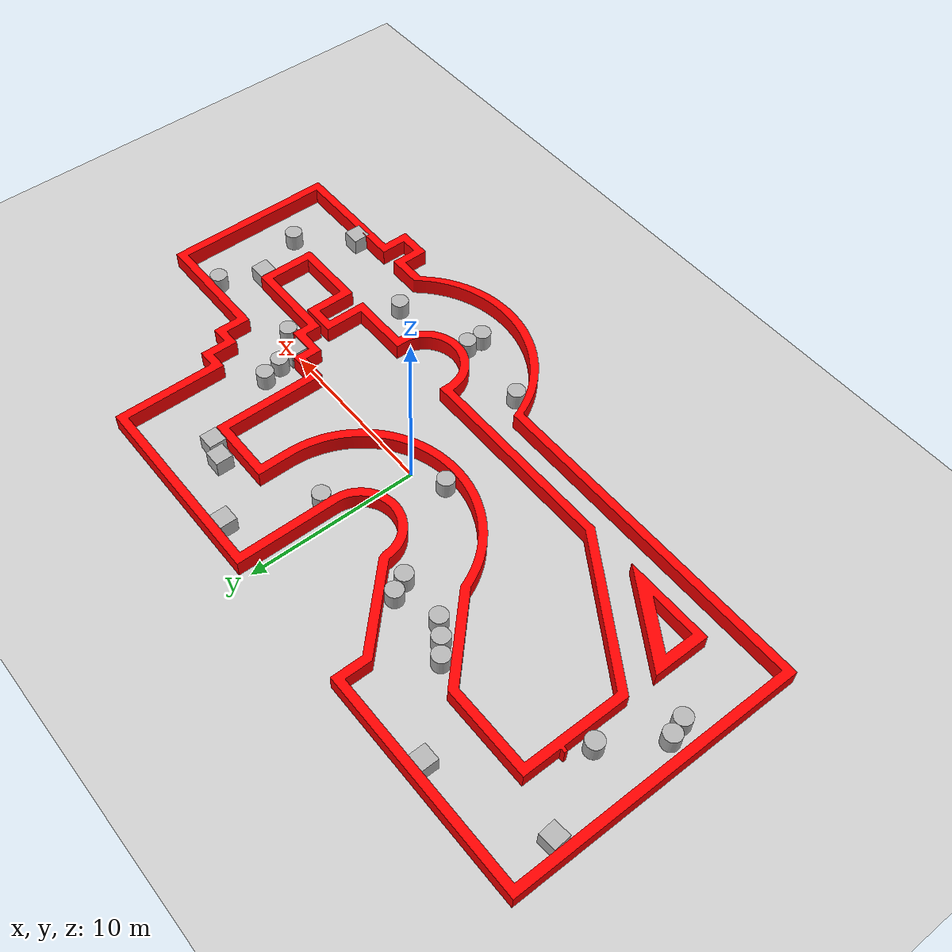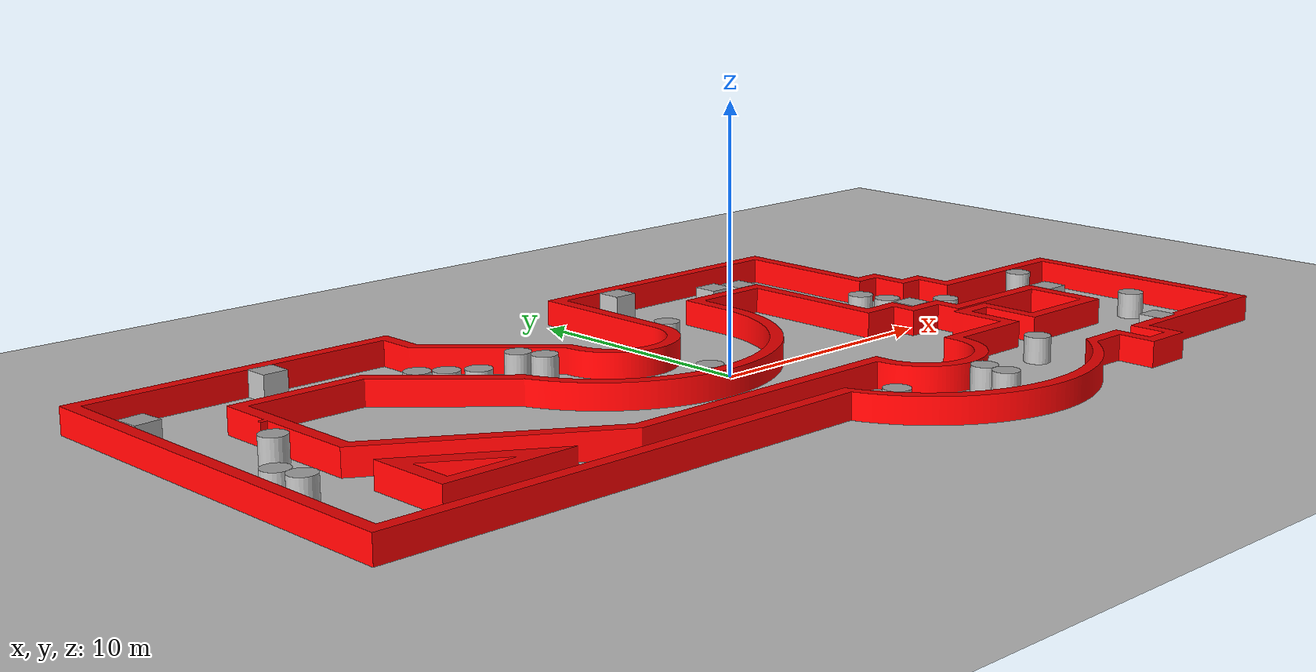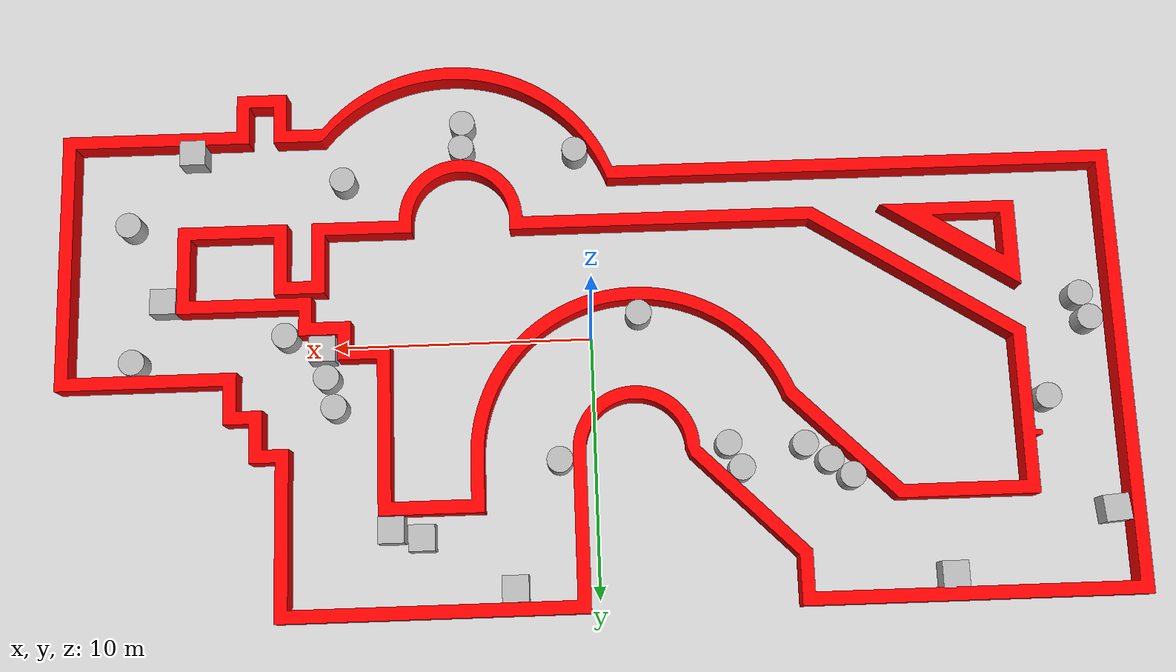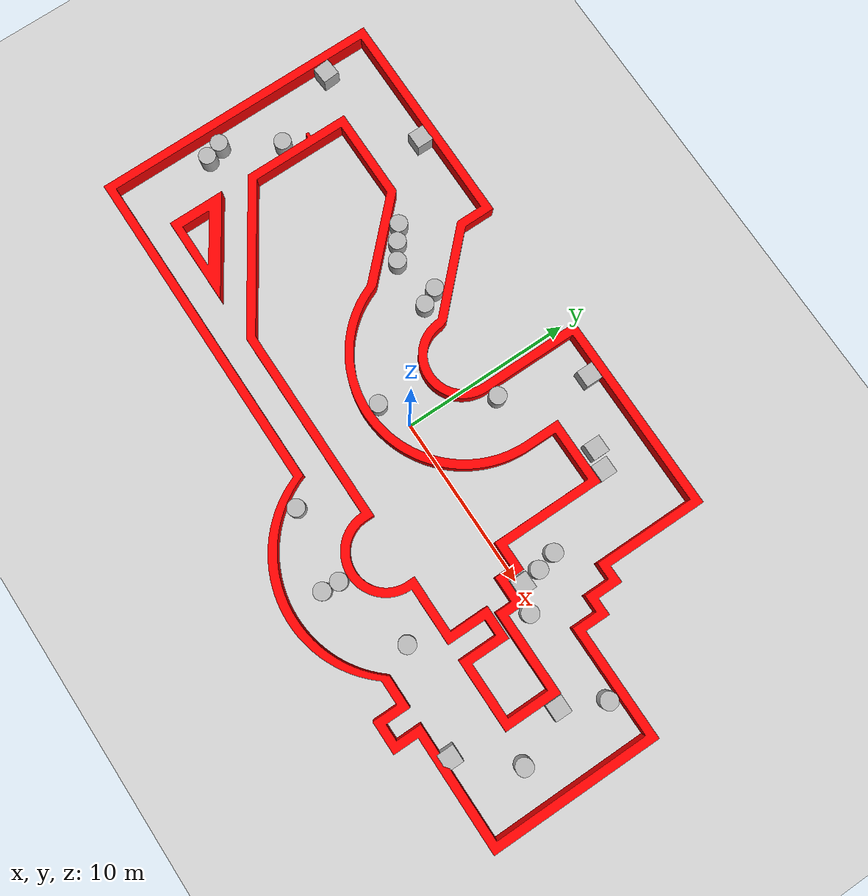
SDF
<sdf version='1.10'>
  <world name='empty_world'>
    <physics name='1ms' type='ignored'>
      <max_step_size>0.001</max_step_size>
      <real_time_factor>1</real_time_factor>
      <real_time_update_rate>1000</real_time_update_rate>
    </physics>
    <plugin name='gz::sim::systems::Physics' filename='gz-sim-physics-system'/>
    <plugin name='gz::sim::systems::Sensors' filename='gz-sim-sensors-system'>
      <render_engine>ogre2</render_engine>
    </plugin>
    <plugin name='gz::sim::systems::Imu' filename='gz-sim-imu-system'/>
    <plugin name='gz::sim::systems::SceneBroadcaster' filename='gz-sim-scene-broadcaster-system'/>
    <plugin name='gz::sim::systems::UserCommands' filename='gz-sim-user-commands-system'/>
    <gravity>0 0 -9.8000000000000007</gravity>
    <magnetic_field>5.5644999999999998e-06 2.2875799999999999e-05 -4.2388400000000002e-05</magnetic_field>
    <atmosphere type='adiabatic'/>
    <scene>
      <ambient>0.400000006 0.400000006 0.400000006 1</ambient>
      <background>0.699999988 0.699999988 0.699999988 1</background>
      <shadows>true</shadows>
    </scene>
    <model name='ground_plane'>
      <static>true</static>
      <link name='link'>
        <collision name='collision'>
          <geometry>
            <plane>
              <normal>0 0 1</normal>
              <size>100 100</size>
            </plane>
          </geometry>
          <surface>
            <friction>
              <ode/>
            </friction>
            <bounce/>
            <contact/>
          </surface>
        </collision>
        <visual name='visual'>
          <geometry>
            <plane>
              <normal>0 0 1</normal>
              <size>100 100</size>
            </plane>
          </geometry>
          <material>
            <ambient>0.800000012 0.800000012 0.800000012 1</ambient>
            <diffuse>0.800000012 0.800000012 0.800000012 1</diffuse>
            <specular>0.800000012 0.800000012 0.800000012 1</specular>
          </material>
        </visual>
        <pose>0 0 0 0 0 0</pose>
        <inertial>
          <pose>0 0 0 0 0 0</pose>
          <mass>1</mass>
          <inertia>
            <ixx>1</ixx>
            <ixy>0</ixy>
            <ixz>0</ixz>
            <iyy>1</iyy>
            <iyz>0</iyz>
            <izz>1</izz>
          </inertia>
        </inertial>
        <enable_wind>false</enable_wind>
      </link>
      <pose>0 0 0 0 0 0</pose>
      <self_collide>false</self_collide>
    </model>
    <model name='stl_maze'>
      <pose>0 0 0 0 0 0</pose>
      <static>true</static>
      <link name='link'>
        <collision name='maze_collision'>
          <geometry>
            <mesh>
              <uri>file:///home/lenovo/mrad_ws_2602_hotel/src/hotel_gazebo/worlds/RaceTrack.stl</uri>
              <scale>10 10 10</scale>
            </mesh>
          </geometry>
          <surface>
            <friction>
              <ode/>
            </friction>
            <bounce/>
            <contact/>
          </surface>
        </collision>
        <visual name='visual'>
          <geometry>
            <mesh>
              <uri>file:///home/lenovo/mrad_ws_2602_hotel/src/hotel_gazebo/worlds/RaceTrack.stl</uri>
              <scale>10 10 10</scale>
            </mesh>
          </geometry>
          <material>
            <ambient>1 0 0 1</ambient>
            <diffuse>1 0 0 1</diffuse>
            <specular>1 0 0 1</specular>
          </material>
        </visual>
        <pose>0 0 0 0 0 0</pose>
        <inertial>
          <pose>0 0 0 0 0 0</pose>
          <mass>1</mass>
          <inertia>
            <ixx>1</ixx>
            <ixy>0</ixy>
            <ixz>0</ixz>
            <iyy>1</iyy>
            <iyz>0</iyz>
            <izz>1</izz>
          </inertia>
        </inertial>
        <enable_wind>false</enable_wind>
      </link>
      <self_collide>false</self_collide>
    </model>
    <model name='box'>
      <pose>-19.447543866838423 7.2747616850761476 0.4999995747579436 -3.8605564281143885e-07 1.6945823438939649e-07 0.077861553158576652</pose>
      <link name='box_link'>
        <inertial>
          <inertia>
            <ixx>0.16666</ixx>
            <ixy>0</ixy>
            <ixz>0</ixz>
            <iyy>0.16666</iyy>
            <iyz>0</iyz>
            <izz>0.16666</izz>
          </inertia>
          <mass>1</mass>
          <pose>0 0 0 0 0 0</pose>
        </inertial>
        <collision name='box_collision'>
          <geometry>
            <box>
              <size>1 1 1</size>
            </box>
          </geometry>
          <surface>
            <friction>
              <ode/>
            </friction>
            <bounce/>
            <contact/>
          </surface>
        </collision>
        <visual name='box_visual'>
          <geometry>
            <box>
              <size>1 1 1</size>
            </box>
          </geometry>
          <material>
            <ambient>0.300000012 0.300000012 0.300000012 1</ambient>
            <diffuse>0.699999988 0.699999988 0.699999988 1</diffuse>
            <specular>1 1 1 1</specular>
          </material>
        </visual>
        <pose>0 0 0 0 0 0</pose>
        <enable_wind>false</enable_wind>
      </link>
      <static>true</static>
      <self_collide>false</self_collide>
    </model>
    <model name='box_0'>
      <pose>-13.199981477717435 9.529411715496714 0.49999999063292572 1.9729171940061026e-08 -1.4001924528147462e-09 0.0024933186258197433</pose>
      <link name='box_link'>
        <inertial>
          <inertia>
            <ixx>0.16666</ixx>
            <ixy>0</ixy>
            <ixz>0</ixz>
            <iyy>0.16666</iyy>
            <iyz>0</iyz>
            <izz>0.16666</izz>
          </inertia>
          <mass>1</mass>
          <pose>0 0 0 0 0 0</pose>
        </inertial>
        <collision name='box_collision'>
          <geometry>
            <box>
              <size>1 1 1</size>
            </box>
          </geometry>
          <surface>
            <friction>
              <ode/>
            </friction>
            <bounce/>
            <contact/>
          </surface>
        </collision>
        <visual name='box_visual'>
          <geometry>
            <box>
              <size>1 1 1</size>
            </box>
          </geometry>
          <material>
            <ambient>0.300000012 0.300000012 0.300000012 1</ambient>
            <diffuse>0.699999988 0.699999988 0.699999988 1</diffuse>
            <specular>1 1 1 1</specular>
          </material>
        </visual>
        <pose>0 0 0 0 0 0</pose>
        <enable_wind>false</enable_wind>
      </link>
      <static>true</static>
      <self_collide>false</self_collide>
    </model>
    <model name='cylinder'>
      <pose>-9.6523482860643313 5.6966679601534516 0.49999943547231995 -1.4102198390911328e-08 1.0731281663783188e-08 -0.050406535512246387</pose>
      <link name='cylinder_link'>
        <inertial>
          <inertia>
            <ixx>0.14580000000000001</ixx>
            <ixy>0</ixy>
            <ixz>0</ixz>
            <iyy>0.14580000000000001</iyy>
            <iyz>0</iyz>
            <izz>0.125</izz>
          </inertia>
          <mass>1</mass>
          <pose>0 0 0 0 0 0</pose>
        </inertial>
        <collision name='cylinder_collision'>
          <geometry>
            <cylinder>
              <radius>0.5</radius>
              <length>1</length>
            </cylinder>
          </geometry>
          <surface>
            <friction>
              <ode/>
            </friction>
            <bounce/>
            <contact/>
          </surface>
        </collision>
        <visual name='cylinder_visual'>
          <geometry>
            <cylinder>
              <radius>0.5</radius>
              <length>1</length>
            </cylinder>
          </geometry>
          <material>
            <ambient>0.300000012 0.300000012 0.300000012 1</ambient>
            <diffuse>0.699999988 0.699999988 0.699999988 1</diffuse>
            <specular>1 1 1 1</specular>
          </material>
        </visual>
        <pose>0 0 0 0 0 0</pose>
        <enable_wind>false</enable_wind>
      </link>
      <static>true</static>
      <self_collide>false</self_collide>
    </model>
    <model name='cylinder_0'>
      <pose>-5.4981639678038725 5.2748518919406786 0.49999942638036005 -3.8159951733573719e-21 -1.6049541814374341e-19 1.6504470069877819e-20</pose>
      <link name='cylinder_link'>
        <inertial>
          <inertia>
            <ixx>0.14580000000000001</ixx>
            <ixy>0</ixy>
            <ixz>0</ixz>
            <iyy>0.14580000000000001</iyy>
            <iyz>0</iyz>
            <izz>0.125</izz>
          </inertia>
          <mass>1</mass>
          <pose>0 0 0 0 0 0</pose>
        </inertial>
        <collision name='cylinder_collision'>
          <geometry>
            <cylinder>
              <radius>0.5</radius>
              <length>1</length>
            </cylinder>
          </geometry>
          <surface>
            <friction>
              <ode/>
            </friction>
            <bounce/>
            <contact/>
          </surface>
        </collision>
        <visual name='cylinder_visual'>
          <geometry>
            <cylinder>
              <radius>0.5</radius>
              <length>1</length>
            </cylinder>
          </geometry>
          <material>
            <ambient>0.300000012 0.300000012 0.300000012 1</ambient>
            <diffuse>0.699999988 0.699999988 0.699999988 1</diffuse>
            <specular>1 1 1 1</specular>
          </material>
        </visual>
        <pose>0 0 0 0 0 0</pose>
        <enable_wind>false</enable_wind>
      </link>
      <static>true</static>
      <self_collide>false</self_collide>
    </model>
    <model name='cylinder_1'>
      <pose>-1.8368737283679906 -0.82918888756835818 0.49999942638036005 1.387387341066153e-19 1.7479834102454724e-19 1.8186544634463279e-20</pose>
      <link name='cylinder_link'>
        <inertial>
          <inertia>
            <ixx>0.14580000000000001</ixx>
            <ixy>0</ixy>
            <ixz>0</ixz>
            <iyy>0.14580000000000001</iyy>
            <iyz>0</iyz>
            <izz>0.125</izz>
          </inertia>
          <mass>1</mass>
          <pose>0 0 0 0 0 0</pose>
        </inertial>
        <collision name='cylinder_collision'>
          <geometry>
            <cylinder>
              <radius>0.5</radius>
              <length>1</length>
            </cylinder>
          </geometry>
          <surface>
            <friction>
              <ode/>
            </friction>
            <bounce/>
            <contact/>
          </surface>
        </collision>
        <visual name='cylinder_visual'>
          <geometry>
            <cylinder>
              <radius>0.5</radius>
              <length>1</length>
            </cylinder>
          </geometry>
          <material>
            <ambient>0.300000012 0.300000012 0.300000012 1</ambient>
            <diffuse>0.699999988 0.699999988 0.699999988 1</diffuse>
            <specular>1 1 1 1</specular>
          </material>
        </visual>
        <pose>0 0 0 0 0 0</pose>
        <enable_wind>false</enable_wind>
      </link>
      <static>true</static>
      <self_collide>false</self_collide>
    </model>
    <model name='cylinder_2'>
      <pose>1.3572129056381694 4.7458462281199152 0.4999994329199538 7.3766348633423013e-16 1.0797278830729775e-08 9.9707944005853484e-10</pose>
      <link name='cylinder_link'>
        <inertial>
          <inertia>
            <ixx>0.14580000000000001</ixx>
            <ixy>0</ixy>
            <ixz>0</ixz>
            <iyy>0.14580000000000001</iyy>
            <iyz>0</iyz>
            <izz>0.125</izz>
          </inertia>
          <mass>1</mass>
          <pose>0 0 0 0 0 0</pose>
        </inertial>
        <collision name='cylinder_collision'>
          <geometry>
            <cylinder>
              <radius>0.5</radius>
              <length>1</length>
            </cylinder>
          </geometry>
          <surface>
            <friction>
              <ode/>
            </friction>
            <bounce/>
            <contact/>
          </surface>
        </collision>
        <visual name='cylinder_visual'>
          <geometry>
            <cylinder>
              <radius>0.5</radius>
              <length>1</length>
            </cylinder>
          </geometry>
          <material>
            <ambient>0.300000012 0.300000012 0.300000012 1</ambient>
            <diffuse>0.699999988 0.699999988 0.699999988 1</diffuse>
            <specular>1 1 1 1</specular>
          </material>
        </visual>
        <pose>0 0 0 0 0 0</pose>
        <enable_wind>false</enable_wind>
      </link>
      <static>true</static>
      <self_collide>false</self_collide>
    </model>
    <model name='box_1'>
      <pose>3.1426352733939655 9.4955979281874896 0.49999999990199806 6.2287739151293738e-22 9.3279666454713669e-22 -3.6315533669320137e-22</pose>
      <link name='box_link'>
        <inertial>
          <inertia>
            <ixx>0.16666</ixx>
            <ixy>0</ixy>
            <ixz>0</ixz>
            <iyy>0.16666</iyy>
            <iyz>0</iyz>
            <izz>0.16666</izz>
          </inertia>
          <mass>1</mass>
          <pose>0 0 0 0 0 0</pose>
        </inertial>
        <collision name='box_collision'>
          <geometry>
            <box>
              <size>1 1 1</size>
            </box>
          </geometry>
          <surface>
            <friction>
              <ode/>
            </friction>
            <bounce/>
            <contact/>
          </surface>
        </collision>
        <visual name='box_visual'>
          <geometry>
            <box>
              <size>1 1 1</size>
            </box>
          </geometry>
          <material>
            <ambient>0.300000012 0.300000012 0.300000012 1</ambient>
            <diffuse>0.699999988 0.699999988 0.699999988 1</diffuse>
            <specular>1 1 1 1</specular>
          </material>
        </visual>
        <pose>0 0 0 0 0 0</pose>
        <enable_wind>false</enable_wind>
      </link>
      <static>true</static>
      <self_collide>false</self_collide>
    </model>
    <model name='box_2'>
      <pose>7.7352183409828932 7.170943573487464 0.49999999990199806 6.2287739151293738e-22 9.3279666454713669e-22 -3.6315533669320137e-22</pose>
      <link name='box_link'>
        <inertial>
          <inertia>
            <ixx>0.16666</ixx>
            <ixy>0</ixy>
            <ixz>0</ixz>
            <iyy>0.16666</iyy>
            <iyz>0</iyz>
            <izz>0.16666</izz>
          </inertia>
          <mass>1</mass>
          <pose>0 0 0 0 0 0</pose>
        </inertial>
        <collision name='box_collision'>
          <geometry>
            <box>
              <size>1 1 1</size>
            </box>
          </geometry>
          <surface>
            <friction>
              <ode/>
            </friction>
            <bounce/>
            <contact/>
          </surface>
        </collision>
        <visual name='box_visual'>
          <geometry>
            <box>
              <size>1 1 1</size>
            </box>
          </geometry>
          <material>
            <ambient>0.300000012 0.300000012 0.300000012 1</ambient>
            <diffuse>0.699999988 0.699999988 0.699999988 1</diffuse>
            <specular>1 1 1 1</specular>
          </material>
        </visual>
        <pose>0 0 0 0 0 0</pose>
        <enable_wind>false</enable_wind>
      </link>
      <static>true</static>
      <self_collide>false</self_collide>
    </model>
    <model name='box_3'>
      <pose>10.320273458855231 0.17719998761532096 0.49999999990199806 6.2287739151293738e-22 9.3279666454713669e-22 -3.6315533669320137e-22</pose>
      <link name='box_link'>
        <inertial>
          <inertia>
            <ixx>0.16666</ixx>
            <ixy>0</ixy>
            <ixz>0</ixz>
            <iyy>0.16666</iyy>
            <iyz>0</iyz>
            <izz>0.16666</izz>
          </inertia>
          <mass>1</mass>
          <pose>0 0 0 0 0 0</pose>
        </inertial>
        <collision name='box_collision'>
          <geometry>
            <box>
              <size>1 1 1</size>
            </box>
          </geometry>
          <surface>
            <friction>
              <ode/>
            </friction>
            <bounce/>
            <contact/>
          </surface>
        </collision>
        <visual name='box_visual'>
          <geometry>
            <box>
              <size>1 1 1</size>
            </box>
          </geometry>
          <material>
            <ambient>0.300000012 0.300000012 0.300000012 1</ambient>
            <diffuse>0.699999988 0.699999988 0.699999988 1</diffuse>
            <specular>1 1 1 1</specular>
          </material>
        </visual>
        <pose>0 0 0 0 0 0</pose>
        <enable_wind>false</enable_wind>
      </link>
      <static>true</static>
      <self_collide>false</self_collide>
    </model>
    <model name='cylinder_3'>
      <pose>10.159927280281213 1.3013546185450826 0.49999942638036005 4.6875231528734115e-19 1.7167537846951419e-19 8.1521379182205424e-21</pose>
      <link name='cylinder_link'>
        <inertial>
          <inertia>
            <ixx>0.14580000000000001</ixx>
            <ixy>0</ixy>
            <ixz>0</ixz>
            <iyy>0.14580000000000001</iyy>
            <iyz>0</iyz>
            <izz>0.125</izz>
          </inertia>
          <mass>1</mass>
          <pose>0 0 0 0 0 0</pose>
        </inertial>
        <collision name='cylinder_collision'>
          <geometry>
            <cylinder>
              <radius>0.5</radius>
              <length>1</length>
            </cylinder>
          </geometry>
          <surface>
            <friction>
              <ode/>
            </friction>
            <bounce/>
            <contact/>
          </surface>
        </collision>
        <visual name='cylinder_visual'>
          <geometry>
            <cylinder>
              <radius>0.5</radius>
              <length>1</length>
            </cylinder>
          </geometry>
          <material>
            <ambient>0.300000012 0.300000012 0.300000012 1</ambient>
            <diffuse>0.699999988 0.699999988 0.699999988 1</diffuse>
            <specular>1 1 1 1</specular>
          </material>
        </visual>
        <pose>0 0 0 0 0 0</pose>
        <enable_wind>false</enable_wind>
      </link>
      <static>true</static>
      <self_collide>false</self_collide>
    </model>
    <model name='cylinder_4'>
      <pose>17.589204301012245 0.46902261892449904 0.49999942638036005 9.6960953410408387e-20 -3.2720050125789555e-19 2.4647587059717133e-20</pose>
      <link name='cylinder_link'>
        <inertial>
          <inertia>
            <ixx>0.14580000000000001</ixx>
            <ixy>0</ixy>
            <ixz>0</ixz>
            <iyy>0.14580000000000001</iyy>
            <iyz>0</iyz>
            <izz>0.125</izz>
          </inertia>
          <mass>1</mass>
          <pose>0 0 0 0 0 0</pose>
        </inertial>
        <collision name='cylinder_collision'>
          <geometry>
            <cylinder>
              <radius>0.5</radius>
              <length>1</length>
            </cylinder>
          </geometry>
          <surface>
            <friction>
              <ode/>
            </friction>
            <bounce/>
            <contact/>
          </surface>
        </collision>
        <visual name='cylinder_visual'>
          <geometry>
            <cylinder>
              <radius>0.5</radius>
              <length>1</length>
            </cylinder>
          </geometry>
          <material>
            <ambient>0.300000012 0.300000012 0.300000012 1</ambient>
            <diffuse>0.699999988 0.699999988 0.699999988 1</diffuse>
            <specular>1 1 1 1</specular>
          </material>
        </visual>
        <pose>0 0 0 0 0 0</pose>
        <enable_wind>false</enable_wind>
      </link>
      <static>true</static>
      <self_collide>false</self_collide>
    </model>
    <model name='box_4'>
      <pose>16.449988264482197 -1.8886496375233657 0.49999999990199806 6.2287739151293738e-22 9.3279666454713669e-22 -3.6315533669320137e-22</pose>
      <link name='box_link'>
        <inertial>
          <inertia>
            <ixx>0.16666</ixx>
            <ixy>0</ixy>
            <ixz>0</ixz>
            <iyy>0.16666</iyy>
            <iyz>0</iyz>
            <izz>0.16666</izz>
          </inertia>
          <mass>1</mass>
          <pose>0 0 0 0 0 0</pose>
        </inertial>
        <collision name='box_collision'>
          <geometry>
            <box>
              <size>1 1 1</size>
            </box>
          </geometry>
          <surface>
            <friction>
              <ode/>
            </friction>
            <bounce/>
            <contact/>
          </surface>
        </collision>
        <visual name='box_visual'>
          <geometry>
            <box>
              <size>1 1 1</size>
            </box>
          </geometry>
          <material>
            <ambient>0.300000012 0.300000012 0.300000012 1</ambient>
            <diffuse>0.699999988 0.699999988 0.699999988 1</diffuse>
            <specular>1 1 1 1</specular>
          </material>
        </visual>
        <pose>0 0 0 0 0 0</pose>
        <enable_wind>false</enable_wind>
      </link>
      <static>true</static>
      <self_collide>false</self_collide>
    </model>

    <model name='box_5'>
      <pose>15.415860327515036 -7.8650439754918162 0.49999999235666714 -2.0235348558019218e-08 -5.4095292036978226e-10 2.754969671188418e-07</pose>
      <link name='box_link'>
        <inertial>
          <inertia>
            <ixx>0.16666</ixx>
            <ixy>0</ixy>
            <ixz>0</ixz>
            <iyy>0.16666</iyy>
            <iyz>0</iyz>
            <izz>0.16666</izz>
          </inertia>
          <mass>1</mass>
          <pose>0 0 0 0 0 0</pose>
        </inertial>
        <collision name='box_collision'>
          <geometry>
            <box>
              <size>1 1 1</size>
            </box>
          </geometry>
          <surface>
            <friction>
              <ode/>
            </friction>
            <bounce/>
            <contact/>
          </surface>
        </collision>
        <visual name='box_visual'>
          <geometry>
            <box>
              <size>1 1 1</size>
            </box>
          </geometry>
          <material>
            <ambient>0.300000012 0.300000012 0.300000012 1</ambient>
            <diffuse>0.699999988 0.699999988 0.699999988 1</diffuse>
            <specular>1 1 1 1</specular>
          </material>
        </visual>
        <pose>0 0 0 0 0 0</pose>
        <enable_wind>false</enable_wind>
      </link>
      <static>true</static>
      <self_collide>false</self_collide>
    </model>
    <model name='cylinder_6'>
      <pose>11.752829611597381 -0.38150180043711845 0.49999942638036005 -7.4475629153943373e-20 2.4314145242684027e-19 2.8384713089617412e-21</pose>
      <link name='cylinder_link'>
        <inertial>
          <inertia>
            <ixx>0.14580000000000001</ixx>
            <ixy>0</ixy>
            <ixz>0</ixz>
            <iyy>0.14580000000000001</iyy>
            <iyz>0</iyz>
            <izz>0.125</izz>
          </inertia>
          <mass>1</mass>
          <pose>0 0 0 0 0 0</pose>
        </inertial>
        <collision name='cylinder_collision'>
          <geometry>
            <cylinder>
              <radius>0.5</radius>
              <length>1</length>
            </cylinder>
          </geometry>
          <surface>
            <friction>
              <ode/>
            </friction>
            <bounce/>
            <contact/>
          </surface>
        </collision>
        <visual name='cylinder_visual'>
          <geometry>
            <cylinder>
              <radius>0.5</radius>
              <length>1</length>
            </cylinder>
          </geometry>
          <material>
            <ambient>0.300000012 0.300000012 0.300000012 1</ambient>
            <diffuse>0.699999988 0.699999988 0.699999988 1</diffuse>
            <specular>1 1 1 1</specular>
          </material>
        </visual>
        <pose>0 0 0 0 0 0</pose>
        <enable_wind>false</enable_wind>
      </link>
      <static>true</static>
      <self_collide>false</self_collide>
    </model>
    <model name='cylinder_7'>
      <pose>17.854267871007053 -4.9818690172100348 0.49999942638036005 -1.2027592401443267e-19 1.0404206135578428e-19 3.1038624854371553e-20</pose>
      <link name='cylinder_link'>
        <inertial>
          <inertia>
            <ixx>0.14580000000000001</ixx>
            <ixy>0</ixy>
            <ixz>0</ixz>
            <iyy>0.14580000000000001</iyy>
            <iyz>0</iyz>
            <izz>0.125</izz>
          </inertia>
          <mass>1</mass>
          <pose>0 0 0 0 0 0</pose>
        </inertial>
        <collision name='cylinder_collision'>
          <geometry>
            <cylinder>
              <radius>0.5</radius>
              <length>1</length>
            </cylinder>
          </geometry>
          <surface>
            <friction>
              <ode/>
            </friction>
            <bounce/>
            <contact/>
          </surface>
        </collision>
        <visual name='cylinder_visual'>
          <geometry>
            <cylinder>
              <radius>0.5</radius>
              <length>1</length>
            </cylinder>
          </geometry>
          <material>
            <ambient>0.300000012 0.300000012 0.300000012 1</ambient>
            <diffuse>0.699999988 0.699999988 0.699999988 1</diffuse>
            <specular>1 1 1 1</specular>
          </material>
        </visual>
        <pose>0 0 0 0 0 0</pose>
        <enable_wind>false</enable_wind>
      </link>
      <static>true</static>
      <self_collide>false</self_collide>
    </model>
    <model name='cylinder_8'>
      <pose>9.5348630115903514 -6.5528362012915853 0.49999942638036005 4.4311015558892038e-19 2.6294776182427126e-19 -1.5024773136058346e-20</pose>
      <link name='cylinder_link'>
        <inertial>
          <inertia>
            <ixx>0.14580000000000001</ixx>
            <ixy>0</ixy>
            <ixz>0</ixz>
            <iyy>0.14580000000000001</iyy>
            <iyz>0</iyz>
            <izz>0.125</izz>
          </inertia>
          <mass>1</mass>
          <pose>0 0 0 0 0 0</pose>
        </inertial>
        <collision name='cylinder_collision'>
          <geometry>
            <cylinder>
              <radius>0.5</radius>
              <length>1</length>
            </cylinder>
          </geometry>
          <surface>
            <friction>
              <ode/>
            </friction>
            <bounce/>
            <contact/>
          </surface>
        </collision>
        <visual name='cylinder_visual'>
          <geometry>
            <cylinder>
              <radius>0.5</radius>
              <length>1</length>
            </cylinder>
          </geometry>
          <material>
            <ambient>0.300000012 0.300000012 0.300000012 1</ambient>
            <diffuse>0.699999988 0.699999988 0.699999988 1</diffuse>
            <specular>1 1 1 1</specular>
          </material>
        </visual>
        <pose>0 0 0 0 0 0</pose>
        <enable_wind>false</enable_wind>
      </link>
      <static>true</static>
      <self_collide>false</self_collide>
    </model>
    <model name='cylinder_9'>
      <pose>4.8736925991263735 -7.7265303594347534 0.49999942638036005 -1.4169845423142048e-19 -1.8146596453449824e-20 3.0926300231275656e-20</pose>
      <link name='cylinder_link'>
        <inertial>
          <inertia>
            <ixx>0.14580000000000001</ixx>
            <ixy>0</ixy>
            <ixz>0</ixz>
            <iyy>0.14580000000000001</iyy>
            <iyz>0</iyz>
            <izz>0.125</izz>
          </inertia>
          <mass>1</mass>
          <pose>0 0 0 0 0 0</pose>
        </inertial>
        <collision name='cylinder_collision'>
          <geometry>
            <cylinder>
              <radius>0.5</radius>
              <length>1</length>
            </cylinder>
          </geometry>
          <surface>
            <friction>
              <ode/>
            </friction>
            <bounce/>
            <contact/>
          </surface>
        </collision>
        <visual name='cylinder_visual'>
          <geometry>
            <cylinder>
              <radius>0.5</radius>
              <length>1</length>
            </cylinder>
          </geometry>
          <material>
            <ambient>0.300000012 0.300000012 0.300000012 1</ambient>
            <diffuse>0.699999988 0.699999988 0.699999988 1</diffuse>
            <specular>1 1 1 1</specular>
          </material>
        </visual>
        <pose>0 0 0 0 0 0</pose>
        <enable_wind>false</enable_wind>
      </link>
      <static>true</static>
      <self_collide>false</self_collide>
    </model>
    <model name='cylinder_10'>
      <pose>0.41807809986648081 -7.5013841398874428 0.49999942638036005 8.3010531714761403e-20 2.0354935397665459e-19 2.4130632553382187e-20</pose>
      <link name='cylinder_link'>
        <inertial>
          <inertia>
            <ixx>0.14580000000000001</ixx>
            <ixy>0</ixy>
            <ixz>0</ixz>
            <iyy>0.14580000000000001</iyy>
            <iyz>0</iyz>
            <izz>0.125</izz>
          </inertia>
          <mass>1</mass>
          <pose>0 0 0 0 0 0</pose>
        </inertial>
        <collision name='cylinder_collision'>
          <geometry>
            <cylinder>
              <radius>0.5</radius>
              <length>1</length>
            </cylinder>
          </geometry>
          <surface>
            <friction>
              <ode/>
            </friction>
            <bounce/>
            <contact/>
          </surface>
        </collision>
        <visual name='cylinder_visual'>
          <geometry>
            <cylinder>
              <radius>0.5</radius>
              <length>1</length>
            </cylinder>
          </geometry>
          <material>
            <ambient>0.300000012 0.300000012 0.300000012 1</ambient>
            <diffuse>0.699999988 0.699999988 0.699999988 1</diffuse>
            <specular>1 1 1 1</specular>
          </material>
        </visual>
        <pose>0 0 0 0 0 0</pose>
        <enable_wind>false</enable_wind>
      </link>
      <static>true</static>
      <self_collide>false</self_collide>
    </model>
    <model name='cylinder_11'>
      <pose>-19.162246332365168 -0.058073825335674255 0.49999999284792374 -2.0927771004003492e-07 -4.501342349749944e-07 0.27328441855679042</pose>
      <link name='cylinder_link'>
        <inertial>
          <inertia>
            <ixx>0.14580000000000001</ixx>
            <ixy>0</ixy>
            <ixz>0</ixz>
            <iyy>0.14580000000000001</iyy>
            <iyz>0</iyz>
            <izz>0.125</izz>
          </inertia>
          <mass>1</mass>
          <pose>0 0 0 0 0 0</pose>
        </inertial>
        <collision name='cylinder_collision'>
          <geometry>
            <cylinder>
              <radius>0.5</radius>
              <length>1</length>
            </cylinder>
          </geometry>
          <surface>
            <friction>
              <ode/>
            </friction>
            <bounce/>
            <contact/>
          </surface>
        </collision>
        <visual name='cylinder_visual'>
          <geometry>
            <cylinder>
              <radius>0.5</radius>
              <length>1</length>
            </cylinder>
          </geometry>
          <material>
            <ambient>0.300000012 0.300000012 0.300000012 1</ambient>
            <diffuse>0.699999988 0.699999988 0.699999988 1</diffuse>
            <specular>1 1 1 1</specular>
          </material>
        </visual>
        <pose>0 0 0 0 0 0</pose>
        <enable_wind>false</enable_wind>
      </link>
      <static>true</static>
      <self_collide>false</self_collide>
    </model>
    <model name='cylinder_12'>
      <pose>-17.276473849782249 2.9505155811153889 0.49999942638036005 3.7773168599644404e-20 -1.466332647943471e-19 3.0024965852931576e-20</pose>
      <link name='cylinder_link'>
        <inertial>
          <inertia>
            <ixx>0.14580000000000001</ixx>
            <ixy>0</ixy>
            <ixz>0</ixz>
            <iyy>0.14580000000000001</iyy>
            <iyz>0</iyz>
            <izz>0.125</izz>
          </inertia>
          <mass>1</mass>
          <pose>0 0 0 0 0 0</pose>
        </inertial>
        <collision name='cylinder_collision'>
          <geometry>
            <cylinder>
              <radius>0.5</radius>
              <length>1</length>
            </cylinder>
          </geometry>
          <surface>
            <friction>
              <ode/>
            </friction>
            <bounce/>
            <contact/>
          </surface>
        </collision>
        <visual name='cylinder_visual'>
          <geometry>
            <cylinder>
              <radius>0.5</radius>
              <length>1</length>
            </cylinder>
          </geometry>
          <material>
            <ambient>0.300000012 0.300000012 0.300000012 1</ambient>
            <diffuse>0.699999988 0.699999988 0.699999988 1</diffuse>
            <specular>1 1 1 1</specular>
          </material>
        </visual>
        <pose>0 0 0 0 0 0</pose>
        <enable_wind>false</enable_wind>
      </link>
      <static>true</static>
      <self_collide>false</self_collide>
    </model>
    <model name='cylinder_13'>
      <pose>-8.8536897222477773 5.0653322834491163 0.49999942638036005 2.8420903840474984e-19 3.0998363938163697e-19 6.8835437580057146e-21</pose>
      <link name='cylinder_link'>
        <inertial>
          <inertia>
            <ixx>0.14580000000000001</ixx>
            <ixy>0</ixy>
            <ixz>0</ixz>
            <iyy>0.14580000000000001</iyy>
            <iyz>0</iyz>
            <izz>0.125</izz>
          </inertia>
          <mass>1</mass>
          <pose>0 0 0 0 0 0</pose>
        </inertial>
        <collision name='cylinder_collision'>
          <geometry>
            <cylinder>
              <radius>0.5</radius>
              <length>1</length>
            </cylinder>
          </geometry>
          <surface>
            <friction>
              <ode/>
            </friction>
            <bounce/>
            <contact/>
          </surface>
        </collision>
        <visual name='cylinder_visual'>
          <geometry>
            <cylinder>
              <radius>0.5</radius>
              <length>1</length>
            </cylinder>
          </geometry>
          <material>
            <ambient>0.300000012 0.300000012 0.300000012 1</ambient>
            <diffuse>0.699999988 0.699999988 0.699999988 1</diffuse>
            <specular>1 1 1 1</specular>
          </material>
        </visual>
        <pose>0 0 0 0 0 0</pose>
        <enable_wind>false</enable_wind>
      </link>
      <static>true</static>
      <self_collide>false</self_collide>
    </model>
    <model name='cylinder_14'>
      <pose>-7.9249927984715658 4.4519193645208253 0.49999942638036005 2.8062591342686179e-19 -1.9969249653193573e-19 -3.133845470380914e-20</pose>
      <link name='cylinder_link'>
        <inertial>
          <inertia>
            <ixx>0.14580000000000001</ixx>
            <ixy>0</ixy>
            <ixz>0</ixz>
            <iyy>0.14580000000000001</iyy>
            <iyz>0</iyz>
            <izz>0.125</izz>
          </inertia>
          <mass>1</mass>
          <pose>0 0 0 0 0 0</pose>
        </inertial>
        <collision name='cylinder_collision'>
          <geometry>
            <cylinder>
              <radius>0.5</radius>
              <length>1</length>
            </cylinder>
          </geometry>
          <surface>
            <friction>
              <ode/>
            </friction>
            <bounce/>
            <contact/>
          </surface>
        </collision>
        <visual name='cylinder_visual'>
          <geometry>
            <cylinder>
              <radius>0.5</radius>
              <length>1</length>
            </cylinder>
          </geometry>
          <material>
            <ambient>0.300000012 0.300000012 0.300000012 1</ambient>
            <diffuse>0.699999988 0.699999988 0.699999988 1</diffuse>
            <specular>1 1 1 1</specular>
          </material>
        </visual>
        <pose>0 0 0 0 0 0</pose>
        <enable_wind>false</enable_wind>
      </link>
      <static>true</static>
      <self_collide>false</self_collide>
    </model>
    <model name='cylinder_15'>
      <pose>-5.0398594795230265 4.3359756712854276 0.49999942638036005 -7.7857886456003757e-21 6.7235981235560875e-19 -2.8495231566825743e-22</pose>
      <link name='cylinder_link'>
        <inertial>
          <inertia>
            <ixx>0.14580000000000001</ixx>
            <ixy>0</ixy>
            <ixz>0</ixz>
            <iyy>0.14580000000000001</iyy>
            <iyz>0</iyz>
            <izz>0.125</izz>
          </inertia>
          <mass>1</mass>
          <pose>0 0 0 0 0 0</pose>
        </inertial>
        <collision name='cylinder_collision'>
          <geometry>
            <cylinder>
              <radius>0.5</radius>
              <length>1</length>
            </cylinder>
          </geometry>
          <surface>
            <friction>
              <ode/>
            </friction>
            <bounce/>
            <contact/>
          </surface>
        </collision>
        <visual name='cylinder_visual'>
          <geometry>
            <cylinder>
              <radius>0.5</radius>
              <length>1</length>
            </cylinder>
          </geometry>
          <material>
            <ambient>0.300000012 0.300000012 0.300000012 1</ambient>
            <diffuse>0.699999988 0.699999988 0.699999988 1</diffuse>
            <specular>1 1 1 1</specular>
          </material>
        </visual>
        <pose>0 0 0 0 0 0</pose>
        <enable_wind>false</enable_wind>
      </link>
      <static>true</static>
      <self_collide>false</self_collide>
    </model>
    <model name='cylinder_16'>
      <pose>4.8186982923226616 -8.7250170280479704 0.49999943337020003 1.1675612602436138e-08 1.249305924377407e-11 -0.067743203688675507</pose>
      <link name='cylinder_link'>
        <inertial>
          <inertia>
            <ixx>0.14580000000000001</ixx>
            <ixy>0</ixy>
            <ixz>0</ixz>
            <iyy>0.14580000000000001</iyy>
            <iyz>0</iyz>
            <izz>0.125</izz>
          </inertia>
          <mass>1</mass>
          <pose>0 0 0 0 0 0</pose>
        </inertial>
        <collision name='cylinder_collision'>
          <geometry>
            <cylinder>
              <radius>0.5</radius>
              <length>1</length>
            </cylinder>
          </geometry>
          <surface>
            <friction>
              <ode/>
            </friction>
            <bounce/>
            <contact/>
          </surface>
        </collision>
        <visual name='cylinder_visual'>
          <geometry>
            <cylinder>
              <radius>0.5</radius>
              <length>1</length>
            </cylinder>
          </geometry>
          <material>
            <ambient>0.300000012 0.300000012 0.300000012 1</ambient>
            <diffuse>0.699999988 0.699999988 0.699999988 1</diffuse>
            <specular>1 1 1 1</specular>
          </material>
        </visual>
        <pose>0 0 0 0 0 0</pose>
        <enable_wind>false</enable_wind>
      </link>
      <static>true</static>
      <self_collide>false</self_collide>
    </model>
    <model name='cylinder_17'>
      <pose>-18.8651900916297 -1.0129338073289493 0.499999338297614 1.8501074420481711e-07 6.2627394996269322e-08 5.2658737226551144e-05</pose>
      <link name='cylinder_link'>
        <inertial>
          <inertia>
            <ixx>0.14580000000000001</ixx>
            <ixy>0</ixy>
            <ixz>0</ixz>
            <iyy>0.14580000000000001</iyy>
            <iyz>0</iyz>
            <izz>0.125</izz>
          </inertia>
          <mass>1</mass>
          <pose>0 0 0 0 0 0</pose>
        </inertial>
        <collision name='cylinder_collision'>
          <geometry>
            <cylinder>
              <radius>0.5</radius>
              <length>1</length>
            </cylinder>
          </geometry>
          <surface>
            <friction>
              <ode/>
            </friction>
            <bounce/>
            <contact/>
          </surface>
        </collision>
        <visual name='cylinder_visual'>
          <geometry>
            <cylinder>
              <radius>0.5</radius>
              <length>1</length>
            </cylinder>
          </geometry>
          <material>
            <ambient>0.300000012 0.300000012 0.300000012 1</ambient>
            <diffuse>0.699999988 0.699999988 0.699999988 1</diffuse>
            <specular>1 1 1 1</specular>
          </material>
        </visual>
        <pose>0 0 0 0 0 0</pose>
        <enable_wind>false</enable_wind>
      </link>
      <static>true</static>
      <self_collide>false</self_collide>
    </model>
    <model name='cylinder_18'>
      <pose>9.8682857802191268 2.4524339399095982 0.49999942638036005 2.2777723844229198e-19 -5.8104987443639407e-20 -2.7513217174761041e-20</pose>
      <link name='cylinder_link'>
        <inertial>
          <inertia>
            <ixx>0.14580000000000001</ixx>
            <ixy>0</ixy>
            <ixz>0</ixz>
            <iyy>0.14580000000000001</iyy>
            <iyz>0</iyz>
            <izz>0.125</izz>
          </inertia>
          <mass>1</mass>
          <pose>0 0 0 0 0 0</pose>
        </inertial>
        <collision name='cylinder_collision'>
          <geometry>
            <cylinder>
              <radius>0.5</radius>
              <length>1</length>
            </cylinder>
          </geometry>
          <surface>
            <friction>
              <ode/>
            </friction>
            <bounce/>
            <contact/>
          </surface>
        </collision>
        <visual name='cylinder_visual'>
          <geometry>
            <cylinder>
              <radius>0.5</radius>
              <length>1</length>
            </cylinder>
          </geometry>
          <material>
            <ambient>0.300000012 0.300000012 0.300000012 1</ambient>
            <diffuse>0.699999988 0.699999988 0.699999988 1</diffuse>
            <specular>1 1 1 1</specular>
          </material>
        </visual>
        <pose>0 0 0 0 0 0</pose>
        <enable_wind>false</enable_wind>
      </link>
      <static>true</static>
      <self_collide>false</self_collide>
    </model>
    <model name='box_6'>
      <pose>6.5952452293068378 7.4983097650374706 0.49999999990199806 6.2287739151293738e-22 9.3279666454713669e-22 -3.6315533669320137e-22</pose>
      <link name='box_link'>
        <inertial>
          <inertia>
            <ixx>0.16666</ixx>
            <ixy>0</ixy>
            <ixz>0</ixz>
            <iyy>0.16666</iyy>
            <iyz>0</iyz>
            <izz>0.16666</izz>
          </inertia>
          <mass>1</mass>
          <pose>0 0 0 0 0 0</pose>
        </inertial>
        <collision name='box_collision'>
          <geometry>
            <box>
              <size>1 1 1</size>
            </box>
          </geometry>
          <surface>
            <friction>
              <ode/>
            </friction>
            <bounce/>
            <contact/>
          </surface>
        </collision>
        <visual name='box_visual'>
          <geometry>
            <box>
              <size>1 1 1</size>
            </box>
          </geometry>
          <material>
            <ambient>0.300000012 0.300000012 0.300000012 1</ambient>
            <diffuse>0.699999988 0.699999988 0.699999988 1</diffuse>
            <specular>1 1 1 1</specular>
          </material>
        </visual>
        <pose>0 0 0 0 0 0</pose>
        <enable_wind>false</enable_wind>
      </link>
      <static>true</static>
      <self_collide>false</self_collide>
    </model>
    <light name='sun' type='directional'>
      <pose>0 0 0 0 0 0</pose>
      <cast_shadows>true</cast_shadows>
      <intensity>1</intensity>
      <direction>-0.5 0.10000000000000001 -0.90000000000000002</direction>
      <diffuse>0.800000012 0.800000012 0.800000012 1</diffuse>
      <specular>0.200000003 0.200000003 0.200000003 1</specular>
      <attenuation>
        <range>1000</range>
        <linear>0.0099999997764825821</linear>
        <constant>0.89999997615814209</constant>
        <quadratic>0.0010000000474974513</quadratic>
      </attenuation>
      <spot>
        <inner_angle>0</inner_angle>
        <outer_angle>0</outer_angle>
        <falloff>0</falloff>
      </spot>
    </light>
  </world>
</sdf>
